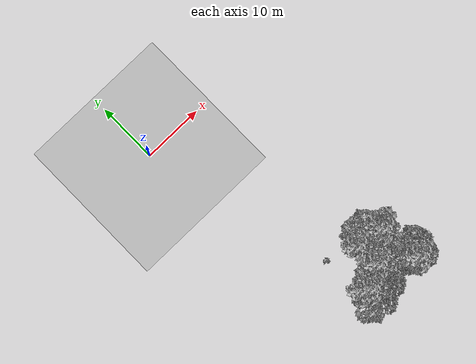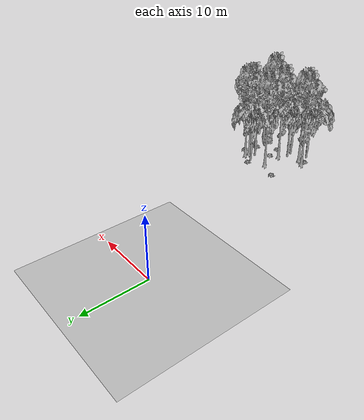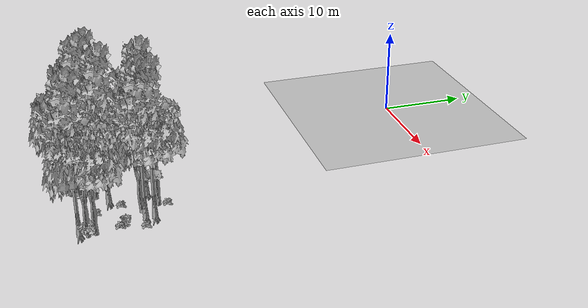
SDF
<sdf version="1.7">
 <world name="default">
  <model name="ground_plane">
   <static>1</static>
   <link name="link">
    <collision name="collision">
     <pose>-50 0 0 0 -0 0</pose>
     <geometry><plane><normal>0 0 1</normal><size>80 80</size></plane></geometry>
     <surface><contact><ode><min_depth>0.01</min_depth><max_vel>0</max_vel></ode></contact></surface>
    </collision>
    <visual name="grass">
     <cast_shadows>0</cast_shadows>
     <geometry>
      <mesh>
       <scale>0.46714285714285714 0.46714285714285714 0.1</scale>
       <uri>file://grass_plane/meshes/grass_plane.dae</uri>
      </mesh>
     </geometry>
    </visual>
   </link>
  </model>
  <model name="Tree 4">
   <static>1</static>
   <pose>8.472431001688406 -39.757540110202086 0 1.57079 -0 0</pose>
   <link name="link">
    <collision name="collision">
     <geometry><mesh><scale>3.5 5 3.5</scale><uri>model://tree_2/meshes/tree_2.obj</uri></mesh></geometry>
    </collision>
    <visual name="visual">
     <geometry><mesh><scale>3.5 5 3.5</scale><uri>model://tree_2/meshes/tree_2.obj</uri></mesh></geometry>
    </visual>
   </link>
  </model>
  <model name="Tree 47">
   <static>1</static>
   <pose>17.77085314754543 -38.9378329764531 0 1.57079 -0 0</pose>
   <link name="link">
    <collision name="collision">
     <geometry><mesh><scale>3.5 5 3.5</scale><uri>model://tree_2/meshes/tree_2.obj</uri></mesh></geometry>
    </collision>
    <visual name="visual">
     <geometry><mesh><scale>3.5 5 3.5</scale><uri>model://tree_2/meshes/tree_2.obj</uri></mesh></geometry>
    </visual>
   </link>
  </model>
  <model name="Tree 178">
   <static>1</static>
   <pose>7.550850038540801 -37.33303246064289 0 1.57079 -0 0</pose>
   <link name="link">
    <collision name="collision">
     <geometry><mesh><scale>3.5 5 3.5</scale><uri>model://tree_9/meshes/tree_9.obj</uri></mesh></geometry>
    </collision>
    <visual name="visual">
     <geometry><mesh><scale>3.5 5 3.5</scale><uri>model://tree_9/meshes/tree_9.obj</uri></mesh></geometry>
    </visual>
   </link>
  </model>
  <model name="Tree 204">
   <static>1</static>
   <pose>17.25798756649059 -39.720493125841045 0 1.57079 -0 0</pose>
   <link name="link">
    <collision name="collision">
     <geometry><mesh><scale>3.5 5 3.5</scale><uri>model://tree_9/meshes/tree_9.obj</uri></mesh></geometry>
    </collision>
    <visual name="visual">
     <geometry><mesh><scale>3.5 5 3.5</scale><uri>model://tree_9/meshes/tree_9.obj</uri></mesh></geometry>
    </visual>
   </link>
  </model>
  <model name="Tree 236">
   <static>1</static>
   <pose>14.87995007479487 -33.33843800620397 0 1.57079 -0 0</pose>
   <link name="link">
    <collision name="collision">
     <geometry><mesh><scale>3.5 5 3.5</scale><uri>model://tree_2/meshes/tree_2.obj</uri></mesh></geometry>
    </collision>
    <visual name="visual">
     <geometry><mesh><scale>3.5 5 3.5</scale><uri>model://tree_2/meshes/tree_2.obj</uri></mesh></geometry>
    </visual>
   </link>
  </model>
  <model name="Tree 265">
   <static>1</static>
   <pose>11.231755314189087 -38.69285755585076 0 1.57079 -0 0</pose>
   <link name="link">
    <collision name="collision">
     <geometry><mesh><scale>3.5 5 3.5</scale><uri>model://tree_2/meshes/tree_2.obj</uri></mesh></geometry>
    </collision>
    <visual name="visual">
     <geometry><mesh><scale>3.5 5 3.5</scale><uri>model://tree_2/meshes/tree_2.obj</uri></mesh></geometry>
    </visual>
   </link>
  </model>
  <model name="Tree 286">
   <static>1</static>
   <pose>16.199402273701743 -33.10136868066756 0 1.57079 -0 0</pose>
   <link name="link">
    <collision name="collision">
     <geometry><mesh><scale>3.5 5 3.5</scale><uri>model://tree_9/meshes/tree_9.obj</uri></mesh></geometry>
    </collision>
    <visual name="visual">
     <geometry><mesh><scale>3.5 5 3.5</scale><uri>model://tree_9/meshes/tree_9.obj</uri></mesh></geometry>
    </visual>
   </link>
  </model>
  <model name="Tree 300">
   <static>1</static>
   <pose>12.021256906275966 -36.28147188643641 0 1.57079 -0 0</pose>
   <link name="link">
    <collision name="collision">
     <geometry><mesh><scale>3.5 5 3.5</scale><uri>model://tree_9/meshes/tree_9.obj</uri></mesh></geometry>
    </collision>
    <visual name="visual">
     <geometry><mesh><scale>3.5 5 3.5</scale><uri>model://tree_9/meshes/tree_9.obj</uri></mesh></geometry>
    </visual>
   </link>
  </model>
  <model name="Tree 384">
   <static>1</static>
   <pose>10.87260217278844 -37.46773105528539 0 1.57079 -0 0</pose>
   <link name="link">
    <collision name="collision">
     <geometry><mesh><scale>3.5 5 3.5</scale><uri>model://tree_2/meshes/tree_2.obj</uri></mesh></geometry>
    </collision>
    <visual name="visual">
     <geometry><mesh><scale>3.5 5 3.5</scale><uri>model://tree_2/meshes/tree_2.obj</uri></mesh></geometry>
    </visual>
   </link>
  </model>
  <model name="Tree 416">
   <static>1</static>
   <pose>11.478277578704613 -32.291769226518454 0 1.57079 -0 0</pose>
   <link name="link">
    <collision name="collision">
     <geometry><mesh><scale>3.5 5 3.5</scale><uri>model://tree_9/meshes/tree_9.obj</uri></mesh></geometry>
    </collision>
    <visual name="visual">
     <geometry><mesh><scale>3.5 5 3.5</scale><uri>model://tree_9/meshes/tree_9.obj</uri></mesh></geometry>
    </visual>
   </link>
  </model>
  <model name="Tree 451">
   <static>1</static>
   <pose>16.210976778677704 -32.15947885655591 0 1.57079 -0 0</pose>
   <link name="link">
    <collision name="collision">
     <geometry><mesh><scale>3.5 5 3.5</scale><uri>model://tree_9/meshes/tree_9.obj</uri></mesh></geometry>
    </collision>
    <visual name="visual">
     <geometry><mesh><scale>3.5 5 3.5</scale><uri>model://tree_9/meshes/tree_9.obj</uri></mesh></geometry>
    </visual>
   </link>
  </model>
  <model name="Tree 493">
   <static>1</static>
   <pose>8.832172928622605 -38.09194030986572 0 1.57079 -0 0</pose>
   <link name="link">
    <collision name="collision">
     <geometry><mesh><scale>3.5 5 3.5</scale><uri>model://tree_9/meshes/tree_9.obj</uri></mesh></geometry>
    </collision>
    <visual name="visual">
     <geometry><mesh><scale>3.5 5 3.5</scale><uri>model://tree_9/meshes/tree_9.obj</uri></mesh></geometry>
    </visual>
   </link>
  </model>
  <model name="Tree 546">
   <static>1</static>
   <pose>17.616852585440135 -38.162995979307794 0 1.57079 -0 0</pose>
   <link name="link">
    <collision name="collision">
     <geometry><mesh><scale>3.5 5 3.5</scale><uri>model://tree_2/meshes/tree_2.obj</uri></mesh></geometry>
    </collision>
    <visual name="visual">
     <geometry><mesh><scale>3.5 5 3.5</scale><uri>model://tree_2/meshes/tree_2.obj</uri></mesh></geometry>
    </visual>
   </link>
  </model>
  <model name="Tree 623">
   <static>1</static>
   <pose>14.035985407554925 -31.45220195125458 0 1.57079 -0 0</pose>
   <link name="link">
    <collision name="collision">
     <geometry><mesh><scale>3.5 5 3.5</scale><uri>model://tree_2/meshes/tree_2.obj</uri></mesh></geometry>
    </collision>
    <visual name="visual">
     <geometry><mesh><scale>3.5 5 3.5</scale><uri>model://tree_2/meshes/tree_2.obj</uri></mesh></geometry>
    </visual>
   </link>
  </model>
  <model name="Bush 1">
   <static>1</static>
   <pose>12.949215633767011 -35.18117618138653 0 1.57079 -0 0</pose>
   <link name="link">
    <collision name="collision">
     <geometry><mesh><scale>2 2 2</scale><uri>model://bush_2/meshes/bush_2.obj</uri></mesh></geometry>
     <surface><contact><collide_without_contact>false</collide_without_contact></contact></surface>
    </collision>
    <visual name="visual">
     <geometry><mesh><scale>2 2 2</scale><uri>model://bush_2/meshes/bush_2.obj</uri></mesh></geometry>
    </visual>
   </link>
  </model>
  <model name="Bush 30">
   <static>1</static>
   <pose>7.553685975282832 -38.161322780264854 0 1.57079 -0 0</pose>
   <link name="link">
    <collision name="collision">
     <geometry><mesh><scale>2 2 2</scale><uri>model://bush_2/meshes/bush_2.obj</uri></mesh></geometry>
     <surface><contact><collide_without_contact>false</collide_without_contact></contact></surface>
    </collision>
    <visual name="visual">
     <geometry><mesh><scale>2 2 2</scale><uri>model://bush_2/meshes/bush_2.obj</uri></mesh></geometry>
    </visual>
   </link>
  </model>
  <model name="Bush 36">
   <static>1</static>
   <pose>13.749164427739153 -37.78709099401269 0 1.57079 -0 0</pose>
   <link name="link">
    <collision name="collision">
     <geometry><mesh><scale>2 2 2</scale><uri>model://bush_2/meshes/bush_2.obj</uri></mesh></geometry>
     <surface><contact><collide_without_contact>false</collide_without_contact></contact></surface>
    </collision>
    <visual name="visual">
     <geometry><mesh><scale>2 2 2</scale><uri>model://bush_2/meshes/bush_2.obj</uri></mesh></geometry>
    </visual>
   </link>
  </model>
  <model name="Bush 55">
   <static>1</static>
   <pose>16.79680995377386 -35.75702443846662 0 1.57079 -0 0</pose>
   <link name="link">
    <collision name="collision">
     <geometry><mesh><scale>2 2 2</scale><uri>model://bush_2/meshes/bush_2.obj</uri></mesh></geometry>
     <surface><contact><collide_without_contact>false</collide_without_contact></contact></surface>
    </collision>
    <visual name="visual">
     <geometry><mesh><scale>2 2 2</scale><uri>model://bush_2/meshes/bush_2.obj</uri></mesh></geometry>
    </visual>
   </link>
  </model>
  <model name="Bush 109">
   <static>1</static>
   <pose>8.088257760206943 -30.549784943118894 0 1.57079 -0 0</pose>
   <link name="link">
    <collision name="collision">
     <geometry><mesh><scale>2 2 2</scale><uri>model://bush_2/meshes/bush_2.obj</uri></mesh></geometry>
     <surface><contact><collide_without_contact>false</collide_without_contact></contact></surface>
    </collision>
    <visual name="visual">
     <geometry><mesh><scale>2 2 2</scale><uri>model://bush_2/meshes/bush_2.obj</uri></mesh></geometry>
    </visual>
   </link>
  </model>
  <model name="Bush 310">
   <static>1</static>
   <pose>17.0065627730608 -35.21856846638869 0 1.57079 -0 0</pose>
   <link name="link">
    <collision name="collision">
     <geometry><mesh><scale>2 2 2</scale><uri>model://bush_4/meshes/bush_4.obj</uri></mesh></geometry>
     <surface><contact><collide_without_contact>false</collide_without_contact></contact></surface>
    </collision>
    <visual name="visual">
     <geometry><mesh><scale>2 2 2</scale><uri>model://bush_4/meshes/bush_4.obj</uri></mesh></geometry>
    </visual>
   </link>
  </model>
  <model name="Bush 378">
   <static>1</static>
   <pose>17.465723216729884 -33.26282951917228 0 1.57079 -0 0</pose>
   <link name="link">
    <collision name="collision">
     <geometry><mesh><scale>2 2 2</scale><uri>model://bush_2/meshes/bush_2.obj</uri></mesh></geometry>
     <surface><contact><collide_without_contact>false</collide_without_contact></contact></surface>
    </collision>
    <visual name="visual">
     <geometry><mesh><scale>2 2 2</scale><uri>model://bush_2/meshes/bush_2.obj</uri></mesh></geometry>
    </visual>
   </link>
  </model>
  <model name="Bush 385">
   <static>1</static>
   <pose>13.850619658536566 -30.53068781391581 0 1.57079 -0 0</pose>
   <link name="link">
    <collision name="collision">
     <geometry><mesh><scale>2 2 2</scale><uri>model://bush_2/meshes/bush_2.obj</uri></mesh></geometry>
     <surface><contact><collide_without_contact>false</collide_without_contact></contact></surface>
    </collision>
    <visual name="visual">
     <geometry><mesh><scale>2 2 2</scale><uri>model://bush_2/meshes/bush_2.obj</uri></mesh></geometry>
    </visual>
   </link>
  </model>
  <model name="Bush 436">
   <static>1</static>
   <pose>17.699200889347928 -39.06046528135282 0 1.57079 -0 0</pose>
   <link name="link">
    <collision name="collision">
     <geometry><mesh><scale>2 2 2</scale><uri>model://bush_1/meshes/bush_1.obj</uri></mesh></geometry>
     <surface><contact><collide_without_contact>false</collide_without_contact></contact></surface>
    </collision>
    <visual name="visual">
     <geometry><mesh><scale>2 2 2</scale><uri>model://bush_1/meshes/bush_1.obj</uri></mesh></geometry>
    </visual>
   </link>
  </model>
 </world>
</sdf>
